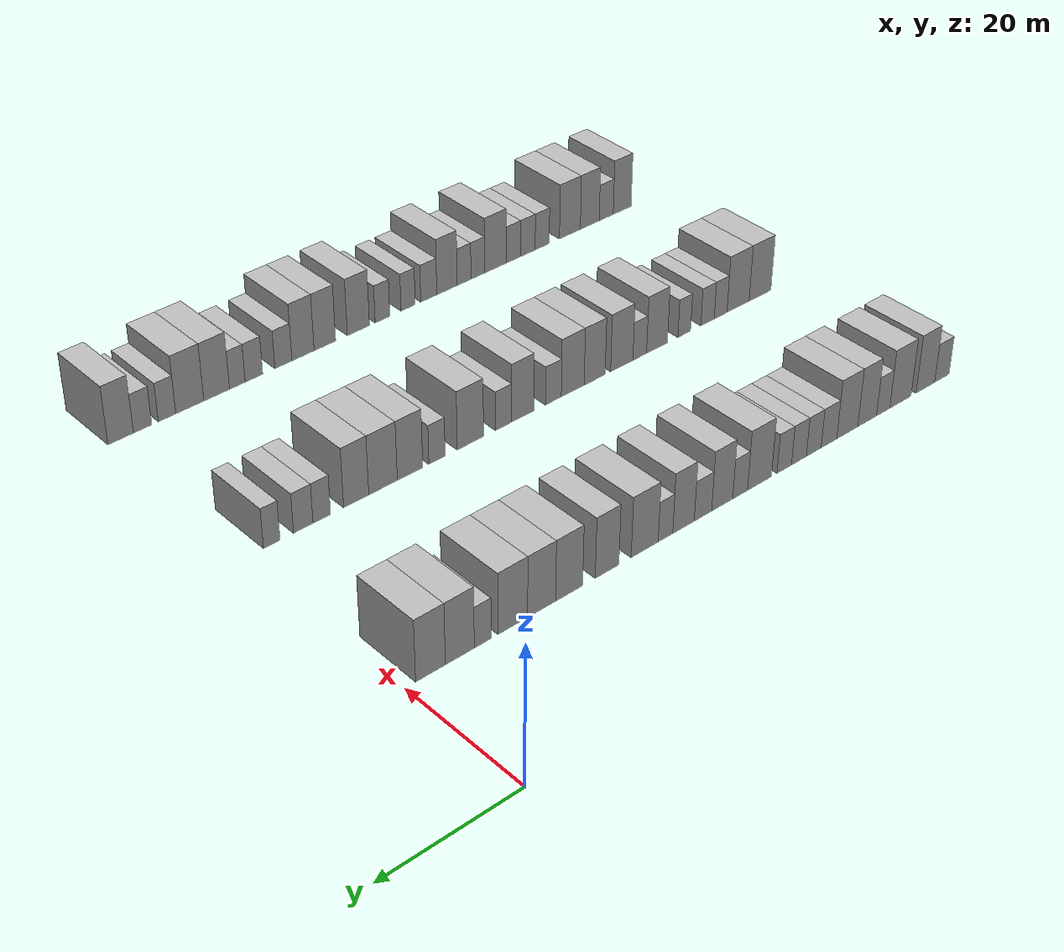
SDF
<sdf version="1.6">
 <world name="default">
  <model name="building_44">
   <static>1</static>
   <pose>25.0000 -91.2287 0 0.000000 0.000000 0.000000</pose>
   <link name="link">
    <pose>0 0 3.00 0 0 0</pose>
    <collision name="collision"><geometry><box><size>10.0000 2.9434 6.0000</size></box></geometry></collision>
    <visual name="visual">
     <cast_shadows>0</cast_shadows>
     <geometry><box><size>10.0000 2.9434 6.0000</size></box></geometry>
     <material>
      <script>
       <uri>model://HANNAS_wall/materials/scripts</uri>
       <uri>model://HANNAS_wall/materials/textures</uri>
       <name>vrc/HANNAS_wall</name>
      </script>
     </material>
    </visual>
   </link>
  </model>
  <model name="building_45">
   <static>1</static>
   <pose>25.0000 -87.8705 0 0.000000 0.000000 0.000000</pose>
   <link name="link">
    <pose>0 0 4.50 0 0 0</pose>
    <collision name="collision"><geometry><box><size>10.0000 3.7730 9.0000</size></box></geometry></collision>
    <visual name="visual">
     <cast_shadows>0</cast_shadows>
     <geometry><box><size>10.0000 3.7730 9.0000</size></box></geometry>
     <material>
      <script>
       <uri>model://HANNAS_wall/materials/scripts</uri>
       <uri>model://HANNAS_wall/materials/textures</uri>
       <name>vrc/HANNAS_wall</name>
      </script>
     </material>
    </visual>
   </link>
  </model>
  <model name="building_46">
   <static>1</static>
   <pose>25.0000 -82.8717 0 0.000000 0.000000 0.000000</pose>
   <link name="link">
    <pose>0 0 4.50 0 0 0</pose>
    <collision name="collision"><geometry><box><size>10.0000 4.2245 9.0000</size></box></geometry></collision>
    <visual name="visual">
     <cast_shadows>0</cast_shadows>
     <geometry><box><size>10.0000 4.2245 9.0000</size></box></geometry>
     <material>
      <script>
       <uri>model://HANNAS_wall/materials/scripts</uri>
       <uri>model://HANNAS_wall/materials/textures</uri>
       <name>vrc/HANNAS_wall</name>
      </script>
     </material>
    </visual>
   </link>
  </model>
  <model name="building_47">
   <static>1</static>
   <pose>25.0000 -79.4530 0 0.000000 0.000000 0.000000</pose>
   <link name="link">
    <pose>0 0 3.00 0 0 0</pose>
    <collision name="collision"><geometry><box><size>10.0000 2.6130 6.0000</size></box></geometry></collision>
    <visual name="visual">
     <cast_shadows>0</cast_shadows>
     <geometry><box><size>10.0000 2.6130 6.0000</size></box></geometry>
     <material>
      <script>
       <uri>model://HANNAS_wall/materials/scripts</uri>
       <uri>model://HANNAS_wall/materials/textures</uri>
       <name>vrc/HANNAS_wall</name>
      </script>
     </material>
    </visual>
   </link>
  </model>
  <model name="building_48">
   <static>1</static>
   <pose>25.0000 -76.3383 0 0.000000 0.000000 0.000000</pose>
   <link name="link">
    <pose>0 0 4.50 0 0 0</pose>
    <collision name="collision"><geometry><box><size>10.0000 3.6164 9.0000</size></box></geometry></collision>
    <visual name="visual">
     <cast_shadows>0</cast_shadows>
     <geometry><box><size>10.0000 3.6164 9.0000</size></box></geometry>
     <material>
      <script>
       <uri>model://HANNAS_wall/materials/scripts</uri>
       <uri>model://HANNAS_wall/materials/textures</uri>
       <name>vrc/HANNAS_wall</name>
      </script>
     </material>
    </visual>
   </link>
  </model>
  <model name="building_49">
   <static>1</static>
   <pose>25.0000 -72.5193 0 0.000000 0.000000 0.000000</pose>
   <link name="link">
    <pose>0 0 4.50 0 0 0</pose>
    <collision name="collision"><geometry><box><size>10.0000 4.0216 9.0000</size></box></geometry></collision>
    <visual name="visual">
     <cast_shadows>0</cast_shadows>
     <geometry><box><size>10.0000 4.0216 9.0000</size></box></geometry>
     <material>
      <script>
       <uri>model://HANNAS_wall/materials/scripts</uri>
       <uri>model://HANNAS_wall/materials/textures</uri>
       <name>vrc/HANNAS_wall</name>
      </script>
     </material>
    </visual>
   </link>
  </model>
  <model name="building_50">
   <static>1</static>
   <pose>25.0000 -69.0408 0 0.000000 0.000000 0.000000</pose>
   <link name="link">
    <pose>0 0 3.00 0 0 0</pose>
    <collision name="collision"><geometry><box><size>10.0000 2.9354 6.0000</size></box></geometry></collision>
    <visual name="visual">
     <cast_shadows>0</cast_shadows>
     <geometry><box><size>10.0000 2.9354 6.0000</size></box></geometry>
     <material>
      <script>
       <uri>model://HANNAS_wall/materials/scripts</uri>
       <uri>model://HANNAS_wall/materials/textures</uri>
       <name>vrc/HANNAS_wall</name>
      </script>
     </material>
    </visual>
   </link>
  </model>
  <model name="building_51">
   <static>1</static>
   <pose>25.0000 -66.1971 0 0.000000 0.000000 0.000000</pose>
   <link name="link">
    <pose>0 0 3.00 0 0 0</pose>
    <collision name="collision"><geometry><box><size>10.0000 2.7520 6.0000</size></box></geometry></collision>
    <visual name="visual">
     <cast_shadows>0</cast_shadows>
     <geometry><box><size>10.0000 2.7520 6.0000</size></box></geometry>
     <material>
      <script>
       <uri>model://HANNAS_wall/materials/scripts</uri>
       <uri>model://HANNAS_wall/materials/textures</uri>
       <name>vrc/HANNAS_wall</name>
      </script>
     </material>
    </visual>
   </link>
  </model>
  <model name="building_52">
   <static>1</static>
   <pose>25.0000 -63.4501 0 0.000000 0.000000 0.000000</pose>
   <link name="link">
    <pose>0 0 3.00 0 0 0</pose>
    <collision name="collision"><geometry><box><size>10.0000 2.7420 6.0000</size></box></geometry></collision>
    <visual name="visual">
     <cast_shadows>0</cast_shadows>
     <geometry><box><size>10.0000 2.7420 6.0000</size></box></geometry>
     <material>
      <script>
       <uri>model://HANNAS_wall/materials/scripts</uri>
       <uri>model://HANNAS_wall/materials/textures</uri>
       <name>vrc/HANNAS_wall</name>
      </script>
     </material>
    </visual>
   </link>
  </model>
  <model name="building_53">
   <static>1</static>
   <pose>25.0000 -60.7589 0 0.000000 0.000000 0.000000</pose>
   <link name="link">
    <pose>0 0 3.00 0 0 0</pose>
    <collision name="collision"><geometry><box><size>10.0000 2.6404 6.0000</size></box></geometry></collision>
    <visual name="visual">
     <cast_shadows>0</cast_shadows>
     <geometry><box><size>10.0000 2.6404 6.0000</size></box></geometry>
     <material>
      <script>
       <uri>model://HANNAS_wall/materials/scripts</uri>
       <uri>model://HANNAS_wall/materials/textures</uri>
       <name>vrc/HANNAS_wall</name>
      </script>
     </material>
    </visual>
   </link>
  </model>
  <model name="building_54">
   <static>1</static>
   <pose>25.0000 -56.2951 0 0.000000 0.000000 0.000000</pose>
   <link name="link">
    <pose>0 0 4.50 0 0 0</pose>
    <collision name="collision"><geometry><box><size>10.0000 4.2872 9.0000</size></box></geometry></collision>
    <visual name="visual">
     <cast_shadows>0</cast_shadows>
     <geometry><box><size>10.0000 4.2872 9.0000</size></box></geometry>
     <material>
      <script>
       <uri>model://HANNAS_wall/materials/scripts</uri>
       <uri>model://HANNAS_wall/materials/textures</uri>
       <name>vrc/HANNAS_wall</name>
      </script>
     </material>
    </visual>
   </link>
  </model>
  <model name="building_55">
   <static>1</static>
   <pose>25.0000 -52.8467 0 0.000000 0.000000 0.000000</pose>
   <link name="link">
    <pose>0 0 3.00 0 0 0</pose>
    <collision name="collision"><geometry><box><size>10.0000 2.6095 6.0000</size></box></geometry></collision>
    <visual name="visual">
     <cast_shadows>0</cast_shadows>
     <geometry><box><size>10.0000 2.6095 6.0000</size></box></geometry>
     <material>
      <script>
       <uri>model://HANNAS_wall/materials/scripts</uri>
       <uri>model://HANNAS_wall/materials/textures</uri>
       <name>vrc/HANNAS_wall</name>
      </script>
     </material>
    </visual>
   </link>
  </model>
  <model name="building_56">
   <static>1</static>
   <pose>25.0000 -49.7008 0 0.000000 0.000000 0.000000</pose>
   <link name="link">
    <pose>0 0 4.50 0 0 0</pose>
    <collision name="collision"><geometry><box><size>10.0000 3.6824 9.0000</size></box></geometry></collision>
    <visual name="visual">
     <cast_shadows>0</cast_shadows>
     <geometry><box><size>10.0000 3.6824 9.0000</size></box></geometry>
     <material>
      <script>
       <uri>model://HANNAS_wall/materials/scripts</uri>
       <uri>model://HANNAS_wall/materials/textures</uri>
       <name>vrc/HANNAS_wall</name>
      </script>
     </material>
    </visual>
   </link>
  </model>
  <model name="building_57">
   <static>1</static>
   <pose>25.0000 -46.3667 0 0.000000 0.000000 0.000000</pose>
   <link name="link">
    <pose>0 0 3.00 0 0 0</pose>
    <collision name="collision"><geometry><box><size>10.0000 2.9858 6.0000</size></box></geometry></collision>
    <visual name="visual">
     <cast_shadows>0</cast_shadows>
     <geometry><box><size>10.0000 2.9858 6.0000</size></box></geometry>
     <material>
      <script>
       <uri>model://HANNAS_wall/materials/scripts</uri>
       <uri>model://HANNAS_wall/materials/textures</uri>
       <name>vrc/HANNAS_wall</name>
      </script>
     </material>
    </visual>
   </link>
  </model>
  <model name="building_58">
   <static>1</static>
   <pose>25.0000 -43.0493 0 0.000000 0.000000 0.000000</pose>
   <link name="link">
    <pose>0 0 4.50 0 0 0</pose>
    <collision name="collision"><geometry><box><size>10.0000 3.6489 9.0000</size></box></geometry></collision>
    <visual name="visual">
     <cast_shadows>0</cast_shadows>
     <geometry><box><size>10.0000 3.6489 9.0000</size></box></geometry>
     <material>
      <script>
       <uri>model://HANNAS_wall/materials/scripts</uri>
       <uri>model://HANNAS_wall/materials/textures</uri>
       <name>vrc/HANNAS_wall</name>
      </script>
     </material>
    </visual>
   </link>
  </model>
  <model name="building_59">
   <static>1</static>
   <pose>25.0000 -40.0002 0 0.000000 0.000000 0.000000</pose>
   <link name="link">
    <pose>0 0 3.00 0 0 0</pose>
    <collision name="collision"><geometry><box><size>10.0000 2.4494 6.0000</size></box></geometry></collision>
    <visual name="visual">
     <cast_shadows>0</cast_shadows>
     <geometry><box><size>10.0000 2.4494 6.0000</size></box></geometry>
     <material>
      <script>
       <uri>model://HANNAS_wall/materials/scripts</uri>
       <uri>model://HANNAS_wall/materials/textures</uri>
       <name>vrc/HANNAS_wall</name>
      </script>
     </material>
    </visual>
   </link>
  </model>
  <model name="building_60">
   <static>1</static>
   <pose>25.0000 -36.5523 0 0.000000 0.000000 0.000000</pose>
   <link name="link">
    <pose>0 0 4.50 0 0 0</pose>
    <collision name="collision"><geometry><box><size>10.0000 4.4465 9.0000</size></box></geometry></collision>
    <visual name="visual">
     <cast_shadows>0</cast_shadows>
     <geometry><box><size>10.0000 4.4465 9.0000</size></box></geometry>
     <material>
      <script>
       <uri>model://HANNAS_wall/materials/scripts</uri>
       <uri>model://HANNAS_wall/materials/textures</uri>
       <name>vrc/HANNAS_wall</name>
      </script>
     </material>
    </visual>
   </link>
  </model>
  <model name="building_61">
   <static>1</static>
   <pose>25.0000 -30.4318 0 0.000000 0.000000 0.000000</pose>
   <link name="link">
    <pose>0 0 4.50 0 0 0</pose>
    <collision name="collision"><geometry><box><size>10.0000 3.7944 9.0000</size></box></geometry></collision>
    <visual name="visual">
     <cast_shadows>0</cast_shadows>
     <geometry><box><size>10.0000 3.7944 9.0000</size></box></geometry>
     <material>
      <script>
       <uri>model://HANNAS_wall/materials/scripts</uri>
       <uri>model://HANNAS_wall/materials/textures</uri>
       <name>vrc/HANNAS_wall</name>
      </script>
     </material>
    </visual>
   </link>
  </model>
  <model name="building_62">
   <static>1</static>
   <pose>25.0000 -24.4105 0 0.000000 0.000000 0.000000</pose>
   <link name="link">
    <pose>0 0 4.50 0 0 0</pose>
    <collision name="collision"><geometry><box><size>10.0000 4.2481 9.0000</size></box></geometry></collision>
    <visual name="visual">
     <cast_shadows>0</cast_shadows>
     <geometry><box><size>10.0000 4.2481 9.0000</size></box></geometry>
     <material>
      <script>
       <uri>model://HANNAS_wall/materials/scripts</uri>
       <uri>model://HANNAS_wall/materials/textures</uri>
       <name>vrc/HANNAS_wall</name>
      </script>
     </material>
    </visual>
   </link>
  </model>
  <model name="building_63">
   <static>1</static>
   <pose>25.0000 -20.1340 0 0.000000 0.000000 0.000000</pose>
   <link name="link">
    <pose>0 0 4.50 0 0 0</pose>
    <collision name="collision"><geometry><box><size>10.0000 4.3049 9.0000</size></box></geometry></collision>
    <visual name="visual">
     <cast_shadows>0</cast_shadows>
     <geometry><box><size>10.0000 4.3049 9.0000</size></box></geometry>
     <material>
      <script>
       <uri>model://HANNAS_wall/materials/scripts</uri>
       <uri>model://HANNAS_wall/materials/textures</uri>
       <name>vrc/HANNAS_wall</name>
      </script>
     </material>
    </visual>
   </link>
  </model>
  <model name="building_64">
   <static>1</static>
   <pose>25.0000 -15.7413 0 0.000000 0.000000 0.000000</pose>
   <link name="link">
    <pose>0 0 4.50 0 0 0</pose>
    <collision name="collision"><geometry><box><size>10.0000 4.4805 9.0000</size></box></geometry></collision>
    <visual name="visual">
     <cast_shadows>0</cast_shadows>
     <geometry><box><size>10.0000 4.4805 9.0000</size></box></geometry>
     <material>
      <script>
       <uri>model://HANNAS_wall/materials/scripts</uri>
       <uri>model://HANNAS_wall/materials/textures</uri>
       <name>vrc/HANNAS_wall</name>
      </script>
     </material>
    </visual>
   </link>
  </model>
  <model name="building_65">
   <static>1</static>
   <pose>25.0000 -11.2513 0 0.000000 0.000000 0.000000</pose>
   <link name="link">
    <pose>0 0 3.00 0 0 0</pose>
    <collision name="collision"><geometry><box><size>10.0000 2.4995 6.0000</size></box></geometry></collision>
    <visual name="visual">
     <cast_shadows>0</cast_shadows>
     <geometry><box><size>10.0000 2.4995 6.0000</size></box></geometry>
     <material>
      <script>
       <uri>model://HANNAS_wall/materials/scripts</uri>
       <uri>model://HANNAS_wall/materials/textures</uri>
       <name>vrc/HANNAS_wall</name>
      </script>
     </material>
    </visual>
   </link>
  </model>
  <model name="building_66">
   <static>1</static>
   <pose>25.0000 -7.8905 0 0.000000 0.000000 0.000000</pose>
   <link name="link">
    <pose>0 0 4.50 0 0 0</pose>
    <collision name="collision"><geometry><box><size>10.0000 4.2222 9.0000</size></box></geometry></collision>
    <visual name="visual">
     <cast_shadows>0</cast_shadows>
     <geometry><box><size>10.0000 4.2222 9.0000</size></box></geometry>
     <material>
      <script>
       <uri>model://HANNAS_wall/materials/scripts</uri>
       <uri>model://HANNAS_wall/materials/textures</uri>
       <name>vrc/HANNAS_wall</name>
      </script>
     </material>
    </visual>
   </link>
  </model>
  <model name="building_67">
   <static>1</static>
   <pose>25.0000 -3.6520 0 0.000000 0.000000 0.000000</pose>
   <link name="link">
    <pose>0 0 4.50 0 0 0</pose>
    <collision name="collision"><geometry><box><size>10.0000 4.2549 9.0000</size></box></geometry></collision>
    <visual name="visual">
     <cast_shadows>0</cast_shadows>
     <geometry><box><size>10.0000 4.2549 9.0000</size></box></geometry>
     <material>
      <script>
       <uri>model://HANNAS_wall/materials/scripts</uri>
       <uri>model://HANNAS_wall/materials/textures</uri>
       <name>vrc/HANNAS_wall</name>
      </script>
     </material>
    </visual>
   </link>
  </model>
  <model name="building_189">
   <static>1</static>
   <pose>55.0000 -87.9633 0 0.000000 0.000000 0.000000</pose>
   <link name="link">
    <pose>0 0 4.50 0 0 0</pose>
    <collision name="collision"><geometry><box><size>10.0000 4.4209 9.0000</size></box></geometry></collision>
    <visual name="visual">
     <cast_shadows>0</cast_shadows>
     <geometry><box><size>10.0000 4.4209 9.0000</size></box></geometry>
     <material>
      <script>
       <uri>model://HANNAS_wall/materials/scripts</uri>
       <uri>model://HANNAS_wall/materials/textures</uri>
       <name>vrc/HANNAS_wall</name>
      </script>
     </material>
    </visual>
   </link>
  </model>
  <model name="building_190">
   <static>1</static>
   <pose>55.0000 -83.5471 0 0.000000 0.000000 0.000000</pose>
   <link name="link">
    <pose>0 0 4.50 0 0 0</pose>
    <collision name="collision"><geometry><box><size>10.0000 4.4114 9.0000</size></box></geometry></collision>
    <visual name="visual">
     <cast_shadows>0</cast_shadows>
     <geometry><box><size>10.0000 4.4114 9.0000</size></box></geometry>
     <material>
      <script>
       <uri>model://HANNAS_wall/materials/scripts</uri>
       <uri>model://HANNAS_wall/materials/textures</uri>
       <name>vrc/HANNAS_wall</name>
      </script>
     </material>
    </visual>
   </link>
  </model>
  <model name="building_191">
   <static>1</static>
   <pose>55.0000 -80.0782 0 0.000000 0.000000 0.000000</pose>
   <link name="link">
    <pose>0 0 3.00 0 0 0</pose>
    <collision name="collision"><geometry><box><size>10.0000 2.5264 6.0000</size></box></geometry></collision>
    <visual name="visual">
     <cast_shadows>0</cast_shadows>
     <geometry><box><size>10.0000 2.5264 6.0000</size></box></geometry>
     <material>
      <script>
       <uri>model://HANNAS_wall/materials/scripts</uri>
       <uri>model://HANNAS_wall/materials/textures</uri>
       <name>vrc/HANNAS_wall</name>
      </script>
     </material>
    </visual>
   </link>
  </model>
  <model name="building_192">
   <static>1</static>
   <pose>55.0000 -77.5062 0 0.000000 0.000000 0.000000</pose>
   <link name="link">
    <pose>0 0 3.00 0 0 0</pose>
    <collision name="collision"><geometry><box><size>10.0000 2.6176 6.0000</size></box></geometry></collision>
    <visual name="visual">
     <cast_shadows>0</cast_shadows>
     <geometry><box><size>10.0000 2.6176 6.0000</size></box></geometry>
     <material>
      <script>
       <uri>model://HANNAS_wall/materials/scripts</uri>
       <uri>model://HANNAS_wall/materials/textures</uri>
       <name>vrc/HANNAS_wall</name>
      </script>
     </material>
    </visual>
   </link>
  </model>
  <model name="building_193">
   <static>1</static>
   <pose>55.0000 -72.9874 0 0.000000 0.000000 0.000000</pose>
   <link name="link">
    <pose>0 0 3.00 0 0 0</pose>
    <collision name="collision"><geometry><box><size>10.0000 2.4201 6.0000</size></box></geometry></collision>
    <visual name="visual">
     <cast_shadows>0</cast_shadows>
     <geometry><box><size>10.0000 2.4201 6.0000</size></box></geometry>
     <material>
      <script>
       <uri>model://HANNAS_wall/materials/scripts</uri>
       <uri>model://HANNAS_wall/materials/textures</uri>
       <name>vrc/HANNAS_wall</name>
      </script>
     </material>
    </visual>
   </link>
  </model>
  <model name="building_194">
   <static>1</static>
   <pose>55.0000 -67.8070 0 0.000000 0.000000 0.000000</pose>
   <link name="link">
    <pose>0 0 4.50 0 0 0</pose>
    <collision name="collision"><geometry><box><size>10.0000 3.9407 9.0000</size></box></geometry></collision>
    <visual name="visual">
     <cast_shadows>0</cast_shadows>
     <geometry><box><size>10.0000 3.9407 9.0000</size></box></geometry>
     <material>
      <script>
       <uri>model://HANNAS_wall/materials/scripts</uri>
       <uri>model://HANNAS_wall/materials/textures</uri>
       <name>vrc/HANNAS_wall</name>
      </script>
     </material>
    </visual>
   </link>
  </model>
  <model name="building_195">
   <static>1</static>
   <pose>55.0000 -64.5639 0 0.000000 0.000000 0.000000</pose>
   <link name="link">
    <pose>0 0 3.00 0 0 0</pose>
    <collision name="collision"><geometry><box><size>10.0000 2.5456 6.0000</size></box></geometry></collision>
    <visual name="visual">
     <cast_shadows>0</cast_shadows>
     <geometry><box><size>10.0000 2.5456 6.0000</size></box></geometry>
     <material>
      <script>
       <uri>model://HANNAS_wall/materials/scripts</uri>
       <uri>model://HANNAS_wall/materials/textures</uri>
       <name>vrc/HANNAS_wall</name>
      </script>
     </material>
    </visual>
   </link>
  </model>
  <model name="building_196">
   <static>1</static>
   <pose>55.0000 -61.2412 0 0.000000 0.000000 0.000000</pose>
   <link name="link">
    <pose>0 0 4.50 0 0 0</pose>
    <collision name="collision"><geometry><box><size>10.0000 4.0998 9.0000</size></box></geometry></collision>
    <visual name="visual">
     <cast_shadows>0</cast_shadows>
     <geometry><box><size>10.0000 4.0998 9.0000</size></box></geometry>
     <material>
      <script>
       <uri>model://HANNAS_wall/materials/scripts</uri>
       <uri>model://HANNAS_wall/materials/textures</uri>
       <name>vrc/HANNAS_wall</name>
      </script>
     </material>
    </visual>
   </link>
  </model>
  <model name="building_197">
   <static>1</static>
   <pose>55.0000 -56.2937 0 0.000000 0.000000 0.000000</pose>
   <link name="link">
    <pose>0 0 4.50 0 0 0</pose>
    <collision name="collision"><geometry><box><size>10.0000 3.7952 9.0000</size></box></geometry></collision>
    <visual name="visual">
     <cast_shadows>0</cast_shadows>
     <geometry><box><size>10.0000 3.7952 9.0000</size></box></geometry>
     <material>
      <script>
       <uri>model://HANNAS_wall/materials/scripts</uri>
       <uri>model://HANNAS_wall/materials/textures</uri>
       <name>vrc/HANNAS_wall</name>
      </script>
     </material>
    </visual>
   </link>
  </model>
  <model name="building_198">
   <static>1</static>
   <pose>55.0000 -52.3637 0 0.000000 0.000000 0.000000</pose>
   <link name="link">
    <pose>0 0 4.50 0 0 0</pose>
    <collision name="collision"><geometry><box><size>10.0000 4.0646 9.0000</size></box></geometry></collision>
    <visual name="visual">
     <cast_shadows>0</cast_shadows>
     <geometry><box><size>10.0000 4.0646 9.0000</size></box></geometry>
     <material>
      <script>
       <uri>model://HANNAS_wall/materials/scripts</uri>
       <uri>model://HANNAS_wall/materials/textures</uri>
       <name>vrc/HANNAS_wall</name>
      </script>
     </material>
    </visual>
   </link>
  </model>
  <model name="building_199">
   <static>1</static>
   <pose>55.0000 -48.9382 0 0.000000 0.000000 0.000000</pose>
   <link name="link">
    <pose>0 0 3.00 0 0 0</pose>
    <collision name="collision"><geometry><box><size>10.0000 2.7865 6.0000</size></box></geometry></collision>
    <visual name="visual">
     <cast_shadows>0</cast_shadows>
     <geometry><box><size>10.0000 2.7865 6.0000</size></box></geometry>
     <material>
      <script>
       <uri>model://HANNAS_wall/materials/scripts</uri>
       <uri>model://HANNAS_wall/materials/textures</uri>
       <name>vrc/HANNAS_wall</name>
      </script>
     </material>
    </visual>
   </link>
  </model>
  <model name="building_200">
   <static>1</static>
   <pose>55.0000 -43.6395 0 0.000000 0.000000 0.000000</pose>
   <link name="link">
    <pose>0 0 4.50 0 0 0</pose>
    <collision name="collision"><geometry><box><size>10.0000 3.8108 9.0000</size></box></geometry></collision>
    <visual name="visual">
     <cast_shadows>0</cast_shadows>
     <geometry><box><size>10.0000 3.8108 9.0000</size></box></geometry>
     <material>
      <script>
       <uri>model://HANNAS_wall/materials/scripts</uri>
       <uri>model://HANNAS_wall/materials/textures</uri>
       <name>vrc/HANNAS_wall</name>
      </script>
     </material>
    </visual>
   </link>
  </model>
  <model name="building_201">
   <static>1</static>
   <pose>55.0000 -40.3448 0 0.000000 0.000000 0.000000</pose>
   <link name="link">
    <pose>0 0 3.00 0 0 0</pose>
    <collision name="collision"><geometry><box><size>10.0000 2.7786 6.0000</size></box></geometry></collision>
    <visual name="visual">
     <cast_shadows>0</cast_shadows>
     <geometry><box><size>10.0000 2.7786 6.0000</size></box></geometry>
     <material>
      <script>
       <uri>model://HANNAS_wall/materials/scripts</uri>
       <uri>model://HANNAS_wall/materials/textures</uri>
       <name>vrc/HANNAS_wall</name>
      </script>
     </material>
    </visual>
   </link>
  </model>
  <model name="building_202">
   <static>1</static>
   <pose>55.0000 -34.7684 0 0.000000 0.000000 0.000000</pose>
   <link name="link">
    <pose>0 0 4.50 0 0 0</pose>
    <collision name="collision"><geometry><box><size>10.0000 4.3742 9.0000</size></box></geometry></collision>
    <visual name="visual">
     <cast_shadows>0</cast_shadows>
     <geometry><box><size>10.0000 4.3742 9.0000</size></box></geometry>
     <material>
      <script>
       <uri>model://HANNAS_wall/materials/scripts</uri>
       <uri>model://HANNAS_wall/materials/textures</uri>
       <name>vrc/HANNAS_wall</name>
      </script>
     </material>
    </visual>
   </link>
  </model>
  <model name="building_203">
   <static>1</static>
   <pose>55.0000 -29.2630 0 0.000000 0.000000 0.000000</pose>
   <link name="link">
    <pose>0 0 3.00 0 0 0</pose>
    <collision name="collision"><geometry><box><size>10.0000 2.6366 6.0000</size></box></geometry></collision>
    <visual name="visual">
     <cast_shadows>0</cast_shadows>
     <geometry><box><size>10.0000 2.6366 6.0000</size></box></geometry>
     <material>
      <script>
       <uri>model://HANNAS_wall/materials/scripts</uri>
       <uri>model://HANNAS_wall/materials/textures</uri>
       <name>vrc/HANNAS_wall</name>
      </script>
     </material>
    </visual>
   </link>
  </model>
  <model name="building_204">
   <static>1</static>
   <pose>55.0000 -24.9162 0 0.000000 0.000000 0.000000</pose>
   <link name="link">
    <pose>0 0 4.50 0 0 0</pose>
    <collision name="collision"><geometry><box><size>10.0000 4.0570 9.0000</size></box></geometry></collision>
    <visual name="visual">
     <cast_shadows>0</cast_shadows>
     <geometry><box><size>10.0000 4.0570 9.0000</size></box></geometry>
     <material>
      <script>
       <uri>model://HANNAS_wall/materials/scripts</uri>
       <uri>model://HANNAS_wall/materials/textures</uri>
       <name>vrc/HANNAS_wall</name>
      </script>
     </material>
    </visual>
   </link>
  </model>
  <model name="building_205">
   <static>1</static>
   <pose>55.0000 -20.6403 0 0.000000 0.000000 0.000000</pose>
   <link name="link">
    <pose>0 0 4.50 0 0 0</pose>
    <collision name="collision"><geometry><box><size>10.0000 4.4949 9.0000</size></box></geometry></collision>
    <visual name="visual">
     <cast_shadows>0</cast_shadows>
     <geometry><box><size>10.0000 4.4949 9.0000</size></box></geometry>
     <material>
      <script>
       <uri>model://HANNAS_wall/materials/scripts</uri>
       <uri>model://HANNAS_wall/materials/textures</uri>
       <name>vrc/HANNAS_wall</name>
      </script>
     </material>
    </visual>
   </link>
  </model>
  <model name="building_206">
   <static>1</static>
   <pose>55.0000 -16.4520 0 0.000000 0.000000 0.000000</pose>
   <link name="link">
    <pose>0 0 4.50 0 0 0</pose>
    <collision name="collision"><geometry><box><size>10.0000 3.8817 9.0000</size></box></geometry></collision>
    <visual name="visual">
     <cast_shadows>0</cast_shadows>
     <geometry><box><size>10.0000 3.8817 9.0000</size></box></geometry>
     <material>
      <script>
       <uri>model://HANNAS_wall/materials/scripts</uri>
       <uri>model://HANNAS_wall/materials/textures</uri>
       <name>vrc/HANNAS_wall</name>
      </script>
     </material>
    </visual>
   </link>
  </model>
  <model name="building_207">
   <static>1</static>
   <pose>55.0000 -11.1906 0 0.000000 0.000000 0.000000</pose>
   <link name="link">
    <pose>0 0 3.00 0 0 0</pose>
    <collision name="collision"><geometry><box><size>10.0000 2.6412 6.0000</size></box></geometry></collision>
    <visual name="visual">
     <cast_shadows>0</cast_shadows>
     <geometry><box><size>10.0000 2.6412 6.0000</size></box></geometry>
     <material>
      <script>
       <uri>model://HANNAS_wall/materials/scripts</uri>
       <uri>model://HANNAS_wall/materials/textures</uri>
       <name>vrc/HANNAS_wall</name>
      </script>
     </material>
    </visual>
   </link>
  </model>
  <model name="building_208">
   <static>1</static>
   <pose>55.0000 -8.4128 0 0.000000 0.000000 0.000000</pose>
   <link name="link">
    <pose>0 0 3.00 0 0 0</pose>
    <collision name="collision"><geometry><box><size>10.0000 2.9144 6.0000</size></box></geometry></collision>
    <visual name="visual">
     <cast_shadows>0</cast_shadows>
     <geometry><box><size>10.0000 2.9144 6.0000</size></box></geometry>
     <material>
      <script>
       <uri>model://HANNAS_wall/materials/scripts</uri>
       <uri>model://HANNAS_wall/materials/textures</uri>
       <name>vrc/HANNAS_wall</name>
      </script>
     </material>
    </visual>
   </link>
  </model>
  <model name="building_209">
   <static>1</static>
   <pose>55.0000 -3.7395 0 0.000000 0.000000 0.000000</pose>
   <link name="link">
    <pose>0 0 3.00 0 0 0</pose>
    <collision name="collision"><geometry><box><size>10.0000 2.4323 6.0000</size></box></geometry></collision>
    <visual name="visual">
     <cast_shadows>0</cast_shadows>
     <geometry><box><size>10.0000 2.4323 6.0000</size></box></geometry>
     <material>
      <script>
       <uri>model://HANNAS_wall/materials/scripts</uri>
       <uri>model://HANNAS_wall/materials/textures</uri>
       <name>vrc/HANNAS_wall</name>
      </script>
     </material>
    </visual>
   </link>
  </model>
  <model name="building_323">
   <static>1</static>
   <pose>85.0000 -89.7607 0 0.000000 0.000000 0.000000</pose>
   <link name="link">
    <pose>0 0 4.50 0 0 0</pose>
    <collision name="collision"><geometry><box><size>10.0000 3.6642 9.0000</size></box></geometry></collision>
    <visual name="visual">
     <cast_shadows>0</cast_shadows>
     <geometry><box><size>10.0000 3.6642 9.0000</size></box></geometry>
     <material>
      <script>
       <uri>model://HANNAS_wall/materials/scripts</uri>
       <uri>model://HANNAS_wall/materials/textures</uri>
       <name>vrc/HANNAS_wall</name>
      </script>
     </material>
    </visual>
   </link>
  </model>
  <model name="building_324">
   <static>1</static>
   <pose>85.0000 -86.4990 0 0.000000 0.000000 0.000000</pose>
   <link name="link">
    <pose>0 0 3.00 0 0 0</pose>
    <collision name="collision"><geometry><box><size>10.0000 2.8592 6.0000</size></box></geometry></collision>
    <visual name="visual">
     <cast_shadows>0</cast_shadows>
     <geometry><box><size>10.0000 2.8592 6.0000</size></box></geometry>
     <material>
      <script>
       <uri>model://HANNAS_wall/materials/scripts</uri>
       <uri>model://HANNAS_wall/materials/textures</uri>
       <name>vrc/HANNAS_wall</name>
      </script>
     </material>
    </visual>
   </link>
  </model>
  <model name="building_325">
   <static>1</static>
   <pose>85.0000 -83.1741 0 0.000000 0.000000 0.000000</pose>
   <link name="link">
    <pose>0 0 4.50 0 0 0</pose>
    <collision name="collision"><geometry><box><size>10.0000 3.7906 9.0000</size></box></geometry></collision>
    <visual name="visual">
     <cast_shadows>0</cast_shadows>
     <geometry><box><size>10.0000 3.7906 9.0000</size></box></geometry>
     <material>
      <script>
       <uri>model://HANNAS_wall/materials/scripts</uri>
       <uri>model://HANNAS_wall/materials/textures</uri>
       <name>vrc/HANNAS_wall</name>
      </script>
     </material>
    </visual>
   </link>
  </model>
  <model name="building_326">
   <static>1</static>
   <pose>85.0000 -79.2077 0 0.000000 0.000000 0.000000</pose>
   <link name="link">
    <pose>0 0 4.50 0 0 0</pose>
    <collision name="collision"><geometry><box><size>10.0000 4.1421 9.0000</size></box></geometry></collision>
    <visual name="visual">
     <cast_shadows>0</cast_shadows>
     <geometry><box><size>10.0000 4.1421 9.0000</size></box></geometry>
     <material>
      <script>
       <uri>model://HANNAS_wall/materials/scripts</uri>
       <uri>model://HANNAS_wall/materials/textures</uri>
       <name>vrc/HANNAS_wall</name>
      </script>
     </material>
    </visual>
   </link>
  </model>
  <model name="building_327">
   <static>1</static>
   <pose>85.0000 -73.7625 0 0.000000 0.000000 0.000000</pose>
   <link name="link">
    <pose>0 0 3.00 0 0 0</pose>
    <collision name="collision"><geometry><box><size>10.0000 2.7483 6.0000</size></box></geometry></collision>
    <visual name="visual">
     <cast_shadows>0</cast_shadows>
     <geometry><box><size>10.0000 2.7483 6.0000</size></box></geometry>
     <material>
      <script>
       <uri>model://HANNAS_wall/materials/scripts</uri>
       <uri>model://HANNAS_wall/materials/textures</uri>
       <name>vrc/HANNAS_wall</name>
      </script>
     </material>
    </visual>
   </link>
  </model>
  <model name="building_328">
   <static>1</static>
   <pose>85.0000 -70.9867 0 0.000000 0.000000 0.000000</pose>
   <link name="link">
    <pose>0 0 3.00 0 0 0</pose>
    <collision name="collision"><geometry><box><size>10.0000 2.8034 6.0000</size></box></geometry></collision>
    <visual name="visual">
     <cast_shadows>0</cast_shadows>
     <geometry><box><size>10.0000 2.8034 6.0000</size></box></geometry>
     <material>
      <script>
       <uri>model://HANNAS_wall/materials/scripts</uri>
       <uri>model://HANNAS_wall/materials/textures</uri>
       <name>vrc/HANNAS_wall</name>
      </script>
     </material>
    </visual>
   </link>
  </model>
  <model name="building_329">
   <static>1</static>
   <pose>85.0000 -68.1918 0 0.000000 0.000000 0.000000</pose>
   <link name="link">
    <pose>0 0 3.00 0 0 0</pose>
    <collision name="collision"><geometry><box><size>10.0000 2.7865 6.0000</size></box></geometry></collision>
    <visual name="visual">
     <cast_shadows>0</cast_shadows>
     <geometry><box><size>10.0000 2.7865 6.0000</size></box></geometry>
     <material>
      <script>
       <uri>model://HANNAS_wall/materials/scripts</uri>
       <uri>model://HANNAS_wall/materials/textures</uri>
       <name>vrc/HANNAS_wall</name>
      </script>
     </material>
    </visual>
   </link>
  </model>
  <model name="building_330">
   <static>1</static>
   <pose>85.0000 -64.7701 0 0.000000 0.000000 0.000000</pose>
   <link name="link">
    <pose>0 0 4.50 0 0 0</pose>
    <collision name="collision"><geometry><box><size>10.0000 4.0569 9.0000</size></box></geometry></collision>
    <visual name="visual">
     <cast_shadows>0</cast_shadows>
     <geometry><box><size>10.0000 4.0569 9.0000</size></box></geometry>
     <material>
      <script>
       <uri>model://HANNAS_wall/materials/scripts</uri>
       <uri>model://HANNAS_wall/materials/textures</uri>
       <name>vrc/HANNAS_wall</name>
      </script>
     </material>
    </visual>
   </link>
  </model>
  <model name="building_331">
   <static>1</static>
   <pose>85.0000 -61.4719 0 0.000000 0.000000 0.000000</pose>
   <link name="link">
    <pose>0 0 3.00 0 0 0</pose>
    <collision name="collision"><geometry><box><size>10.0000 2.5395 6.0000</size></box></geometry></collision>
    <visual name="visual">
     <cast_shadows>0</cast_shadows>
     <geometry><box><size>10.0000 2.5395 6.0000</size></box></geometry>
     <material>
      <script>
       <uri>model://HANNAS_wall/materials/scripts</uri>
       <uri>model://HANNAS_wall/materials/textures</uri>
       <name>vrc/HANNAS_wall</name>
      </script>
     </material>
    </visual>
   </link>
  </model>
  <model name="building_332">
   <static>1</static>
   <pose>85.0000 -58.9277 0 0.000000 0.000000 0.000000</pose>
   <link name="link">
    <pose>0 0 3.00 0 0 0</pose>
    <collision name="collision"><geometry><box><size>10.0000 2.5489 6.0000</size></box></geometry></collision>
    <visual name="visual">
     <cast_shadows>0</cast_shadows>
     <geometry><box><size>10.0000 2.5489 6.0000</size></box></geometry>
     <material>
      <script>
       <uri>model://HANNAS_wall/materials/scripts</uri>
       <uri>model://HANNAS_wall/materials/textures</uri>
       <name>vrc/HANNAS_wall</name>
      </script>
     </material>
    </visual>
   </link>
  </model>
  <model name="building_333">
   <static>1</static>
   <pose>85.0000 -55.7805 0 0.000000 0.000000 0.000000</pose>
   <link name="link">
    <pose>0 0 4.50 0 0 0</pose>
    <collision name="collision"><geometry><box><size>10.0000 3.7455 9.0000</size></box></geometry></collision>
    <visual name="visual">
     <cast_shadows>0</cast_shadows>
     <geometry><box><size>10.0000 3.7455 9.0000</size></box></geometry>
     <material>
      <script>
       <uri>model://HANNAS_wall/materials/scripts</uri>
       <uri>model://HANNAS_wall/materials/textures</uri>
       <name>vrc/HANNAS_wall</name>
      </script>
     </material>
    </visual>
   </link>
  </model>
  <model name="building_334">
   <static>1</static>
   <pose>85.0000 -52.4623 0 0.000000 0.000000 0.000000</pose>
   <link name="link">
    <pose>0 0 3.00 0 0 0</pose>
    <collision name="collision"><geometry><box><size>10.0000 2.8909 6.0000</size></box></geometry></collision>
    <visual name="visual">
     <cast_shadows>0</cast_shadows>
     <geometry><box><size>10.0000 2.8909 6.0000</size></box></geometry>
     <material>
      <script>
       <uri>model://HANNAS_wall/materials/scripts</uri>
       <uri>model://HANNAS_wall/materials/textures</uri>
       <name>vrc/HANNAS_wall</name>
      </script>
     </material>
    </visual>
   </link>
  </model>
  <model name="building_335">
   <static>1</static>
   <pose>85.0000 -48.7557 0 0.000000 0.000000 0.000000</pose>
   <link name="link">
    <pose>0 0 3.00 0 0 0</pose>
    <collision name="collision"><geometry><box><size>10.0000 2.5223 6.0000</size></box></geometry></collision>
    <visual name="visual">
     <cast_shadows>0</cast_shadows>
     <geometry><box><size>10.0000 2.5223 6.0000</size></box></geometry>
     <material>
      <script>
       <uri>model://HANNAS_wall/materials/scripts</uri>
       <uri>model://HANNAS_wall/materials/textures</uri>
       <name>vrc/HANNAS_wall</name>
      </script>
     </material>
    </visual>
   </link>
  </model>
  <model name="building_336">
   <static>1</static>
   <pose>85.0000 -44.2113 0 0.000000 0.000000 0.000000</pose>
   <link name="link">
    <pose>0 0 3.00 0 0 0</pose>
    <collision name="collision"><geometry><box><size>10.0000 2.5666 6.0000</size></box></geometry></collision>
    <visual name="visual">
     <cast_shadows>0</cast_shadows>
     <geometry><box><size>10.0000 2.5666 6.0000</size></box></geometry>
     <material>
      <script>
       <uri>model://HANNAS_wall/materials/scripts</uri>
       <uri>model://HANNAS_wall/materials/textures</uri>
       <name>vrc/HANNAS_wall</name>
      </script>
     </material>
    </visual>
   </link>
  </model>
  <model name="building_337">
   <static>1</static>
   <pose>85.0000 -40.0183 0 0.000000 0.000000 0.000000</pose>
   <link name="link">
    <pose>0 0 4.50 0 0 0</pose>
    <collision name="collision"><geometry><box><size>10.0000 3.8193 9.0000</size></box></geometry></collision>
    <visual name="visual">
     <cast_shadows>0</cast_shadows>
     <geometry><box><size>10.0000 3.8193 9.0000</size></box></geometry>
     <material>
      <script>
       <uri>model://HANNAS_wall/materials/scripts</uri>
       <uri>model://HANNAS_wall/materials/textures</uri>
       <name>vrc/HANNAS_wall</name>
      </script>
     </material>
    </visual>
   </link>
  </model>
  <model name="building_338">
   <static>1</static>
   <pose>85.0000 -34.2824 0 0.000000 0.000000 0.000000</pose>
   <link name="link">
    <pose>0 0 4.50 0 0 0</pose>
    <collision name="collision"><geometry><box><size>10.0000 3.6524 9.0000</size></box></geometry></collision>
    <visual name="visual">
     <cast_shadows>0</cast_shadows>
     <geometry><box><size>10.0000 3.6524 9.0000</size></box></geometry>
     <material>
      <script>
       <uri>model://HANNAS_wall/materials/scripts</uri>
       <uri>model://HANNAS_wall/materials/textures</uri>
       <name>vrc/HANNAS_wall</name>
      </script>
     </material>
    </visual>
   </link>
  </model>
  <model name="building_339">
   <static>1</static>
   <pose>85.0000 -30.6018 0 0.000000 0.000000 0.000000</pose>
   <link name="link">
    <pose>0 0 4.50 0 0 0</pose>
    <collision name="collision"><geometry><box><size>10.0000 3.7087 9.0000</size></box></geometry></collision>
    <visual name="visual">
     <cast_shadows>0</cast_shadows>
     <geometry><box><size>10.0000 3.7087 9.0000</size></box></geometry>
     <material>
      <script>
       <uri>model://HANNAS_wall/materials/scripts</uri>
       <uri>model://HANNAS_wall/materials/textures</uri>
       <name>vrc/HANNAS_wall</name>
      </script>
     </material>
    </visual>
   </link>
  </model>
  <model name="building_340">
   <static>1</static>
   <pose>85.0000 -27.3449 0 0.000000 0.000000 0.000000</pose>
   <link name="link">
    <pose>0 0 3.00 0 0 0</pose>
    <collision name="collision"><geometry><box><size>10.0000 2.8052 6.0000</size></box></geometry></collision>
    <visual name="visual">
     <cast_shadows>0</cast_shadows>
     <geometry><box><size>10.0000 2.8052 6.0000</size></box></geometry>
     <material>
      <script>
       <uri>model://HANNAS_wall/materials/scripts</uri>
       <uri>model://HANNAS_wall/materials/textures</uri>
       <name>vrc/HANNAS_wall</name>
      </script>
     </material>
    </visual>
   </link>
  </model>
  <model name="building_341">
   <static>1</static>
   <pose>85.0000 -22.5245 0 0.000000 0.000000 0.000000</pose>
   <link name="link">
    <pose>0 0 3.00 0 0 0</pose>
    <collision name="collision"><geometry><box><size>10.0000 2.8354 6.0000</size></box></geometry></collision>
    <visual name="visual">
     <cast_shadows>0</cast_shadows>
     <geometry><box><size>10.0000 2.8354 6.0000</size></box></geometry>
     <material>
      <script>
       <uri>model://HANNAS_wall/materials/scripts</uri>
       <uri>model://HANNAS_wall/materials/textures</uri>
       <name>vrc/HANNAS_wall</name>
      </script>
     </material>
    </visual>
   </link>
  </model>
  <model name="building_342">
   <static>1</static>
   <pose>85.0000 -19.8525 0 0.000000 0.000000 0.000000</pose>
   <link name="link">
    <pose>0 0 3.00 0 0 0</pose>
    <collision name="collision"><geometry><box><size>10.0000 2.5086 6.0000</size></box></geometry></collision>
    <visual name="visual">
     <cast_shadows>0</cast_shadows>
     <geometry><box><size>10.0000 2.5086 6.0000</size></box></geometry>
     <material>
      <script>
       <uri>model://HANNAS_wall/materials/scripts</uri>
       <uri>model://HANNAS_wall/materials/textures</uri>
       <name>vrc/HANNAS_wall</name>
      </script>
     </material>
    </visual>
   </link>
  </model>
  <model name="building_343">
   <static>1</static>
   <pose>85.0000 -16.5556 0 0.000000 0.000000 0.000000</pose>
   <link name="link">
    <pose>0 0 4.50 0 0 0</pose>
    <collision name="collision"><geometry><box><size>10.0000 4.0852 9.0000</size></box></geometry></collision>
    <visual name="visual">
     <cast_shadows>0</cast_shadows>
     <geometry><box><size>10.0000 4.0852 9.0000</size></box></geometry>
     <material>
      <script>
       <uri>model://HANNAS_wall/materials/scripts</uri>
       <uri>model://HANNAS_wall/materials/textures</uri>
       <name>vrc/HANNAS_wall</name>
      </script>
     </material>
    </visual>
   </link>
  </model>
  <model name="building_344">
   <static>1</static>
   <pose>85.0000 -12.3306 0 0.000000 0.000000 0.000000</pose>
   <link name="link">
    <pose>0 0 4.50 0 0 0</pose>
    <collision name="collision"><geometry><box><size>10.0000 4.3648 9.0000</size></box></geometry></collision>
    <visual name="visual">
     <cast_shadows>0</cast_shadows>
     <geometry><box><size>10.0000 4.3648 9.0000</size></box></geometry>
     <material>
      <script>
       <uri>model://HANNAS_wall/materials/scripts</uri>
       <uri>model://HANNAS_wall/materials/textures</uri>
       <name>vrc/HANNAS_wall</name>
      </script>
     </material>
    </visual>
   </link>
  </model>
  <model name="building_345">
   <static>1</static>
   <pose>85.0000 -8.8043 0 0.000000 0.000000 0.000000</pose>
   <link name="link">
    <pose>0 0 3.00 0 0 0</pose>
    <collision name="collision"><geometry><box><size>10.0000 2.6878 6.0000</size></box></geometry></collision>
    <visual name="visual">
     <cast_shadows>0</cast_shadows>
     <geometry><box><size>10.0000 2.6878 6.0000</size></box></geometry>
     <material>
      <script>
       <uri>model://HANNAS_wall/materials/scripts</uri>
       <uri>model://HANNAS_wall/materials/textures</uri>
       <name>vrc/HANNAS_wall</name>
      </script>
     </material>
    </visual>
   </link>
  </model>
  <model name="building_346">
   <static>1</static>
   <pose>85.0000 -5.0734 0 0.000000 0.000000 0.000000</pose>
   <link name="link">
    <pose>0 0 3.00 0 0 0</pose>
    <collision name="collision"><geometry><box><size>10.0000 2.7740 6.0000</size></box></geometry></collision>
    <visual name="visual">
     <cast_shadows>0</cast_shadows>
     <geometry><box><size>10.0000 2.7740 6.0000</size></box></geometry>
     <material>
      <script>
       <uri>model://HANNAS_wall/materials/scripts</uri>
       <uri>model://HANNAS_wall/materials/textures</uri>
       <name>vrc/HANNAS_wall</name>
      </script>
     </material>
    </visual>
   </link>
  </model>
  <model name="building_347">
   <static>1</static>
   <pose>85.0000 -1.7727 0 0.000000 0.000000 0.000000</pose>
   <link name="link">
    <pose>0 0 4.50 0 0 0</pose>
    <collision name="collision"><geometry><box><size>10.0000 3.8273 9.0000</size></box></geometry></collision>
    <visual name="visual">
     <cast_shadows>0</cast_shadows>
     <geometry><box><size>10.0000 3.8273 9.0000</size></box></geometry>
     <material>
      <script>
       <uri>model://HANNAS_wall/materials/scripts</uri>
       <uri>model://HANNAS_wall/materials/textures</uri>
       <name>vrc/HANNAS_wall</name>
      </script>
     </material>
    </visual>
   </link>
  </model>
 </world>
</sdf>
